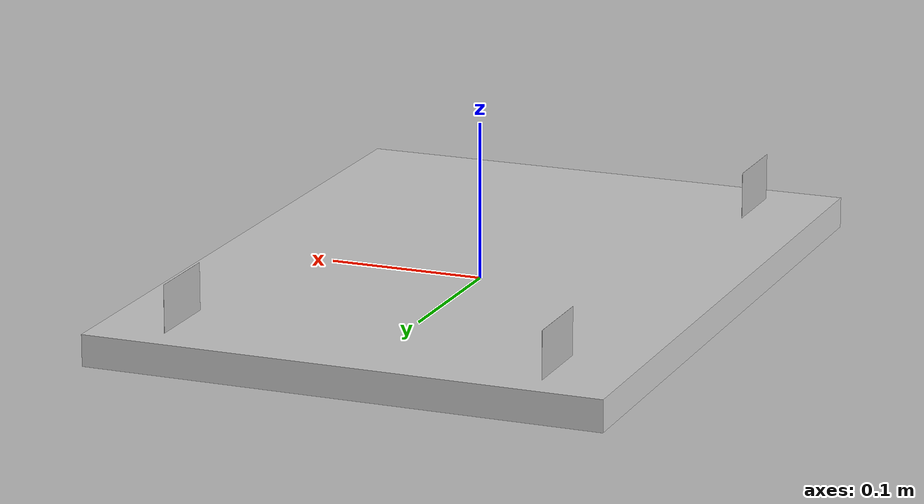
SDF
<?xml version="1.0"?>
<sdf version="1.7">
  <model name="control_panel">
    <static>true</static>

    <!-- Main panel box -->
    <link name="panel_base">
      <pose>0 0 0 0 0 0</pose>
      <visual name="panel_visual">
        <geometry>
          <box>
            <size>0.33 0.45 0.02</size> <!-- 330mm x 450mm x 20mm -->
          </box>
        </geometry>
        <material>
          <ambient>0.8 0.8 0.8 1</ambient>
          <diffuse>0.8 0.8 0.8 1</diffuse>
          <specular>0.1 0.1 0.1 1</specular>
        </material>
      </visual>
      <collision name="panel_collision">
        <geometry>
          <box>
            <size>0.33 0.45 0.02</size>
          </box>
        </geometry>
      </collision>
      <inertial>
        <mass>1.0</mass>
        <inertia>
          <ixx>0.01</ixx>
          <iyy>0.01</iyy>
          <izz>0.01</izz>
        </inertia>
      </inertial>
    </link>

    <!-- ArUco marker - Top Left -->
    <link name="aruco_top_left">
      <pose>-0.12 0.18 0.015 0 0 0</pose>
      <visual name="aruco_top_left_visual">
        <pose>0 0 0 0 0 0</pose>
        <geometry>
          <box>
            <size>0.0001 0.05 0.05</size> <!-- Very thin box like the example -->
          </box>
        </geometry>
        <material>
          <script>
            <uri>model://control_panel/materials/scripts</uri>
            <uri>model://control_panel/materials/textures</uri>
            <name>Aruco0</name>
          </script>
        </material>
      </visual>
      <collision name="aruco_top_left_collision">
        <geometry>
          <box>
            <size>0.0001 0.05 0.05</size>
          </box>
        </geometry>
      </collision>
      <inertial>
        <mass>0.01</mass>
        <inertia>
          <ixx>0.0001</ixx>
          <iyy>0.0001</iyy>
          <izz>0.0001</izz>
        </inertia>
      </inertial>
    </link>

    <!-- ArUco marker - Top Right -->
    <link name="aruco_top_right">
      <pose>0.12 0.18 0.015 0 0 0</pose>
      <visual name="aruco_top_right_visual">
        <pose>0 0 0 0 0 0</pose>
        <geometry>
          <box>
            <size>0.0001 0.05 0.05</size>
          </box>
        </geometry>
        <material>
          <script>
            <uri>model://control_panel/materials/scripts</uri>
            <uri>model://control_panel/materials/textures</uri>
            <name>Aruco1</name>
          </script>
        </material>
      </visual>
      <collision name="aruco_top_right_collision">
        <geometry>
          <box>
            <size>0.0001 0.05 0.05</size>
          </box>
        </geometry>
      </collision>
      <inertial>
        <mass>0.01</mass>
        <inertia>
          <ixx>0.0001</ixx>
          <iyy>0.0001</iyy>
          <izz>0.0001</izz>
        </inertia>
      </inertial>
    </link>

    <!-- ArUco marker - Bottom Left -->
    <link name="aruco_bottom_left">
      <pose>-0.12 -0.18 0.015 0 0 0</pose>
      <visual name="aruco_bottom_left_visual">
        <pose>0 0 0 0 0 0</pose>
        <geometry>
          <box>
            <size>0.0001 0.05 0.05</size>
          </box>
        </geometry>
        <material>
          <script>
            <uri>model://urdf_humble_test/materials/scripts</uri>
            <uri>model://urdf_humble_test/materials/textures</uri>
            <name>Aruco2</name>
          </script>
        </material>
      </visual>
      <collision name="aruco_bottom_left_collision">
        <geometry>
          <box>
            <size>0.0001 0.05 0.05</size>
          </box>
        </geometry>
      </collision>
      <inertial>
        <mass>0.01</mass>
        <inertia>
          <ixx>0.0001</ixx>
          <iyy>0.0001</iyy>
          <izz>0.0001</izz>
        </inertia>
      </inertial>
    </link>

    <!-- Joint to attach top left ArUco to panel -->
    <joint name="aruco_top_left_joint" type="fixed">
      <parent>panel_base</parent>
      <child>aruco_top_left</child>
    </joint>

    <!-- Joint to attach top right ArUco to panel -->
    <joint name="aruco_top_right_joint" type="fixed">
      <parent>panel_base</parent>
      <child>aruco_top_right</child>
    </joint>

    <!-- Joint to attach bottom left ArUco to panel -->
    <joint name="aruco_bottom_left_joint" type="fixed">
      <parent>panel_base</parent>
      <child>aruco_bottom_left</child>
    </joint>

  </model>
</sdf>
